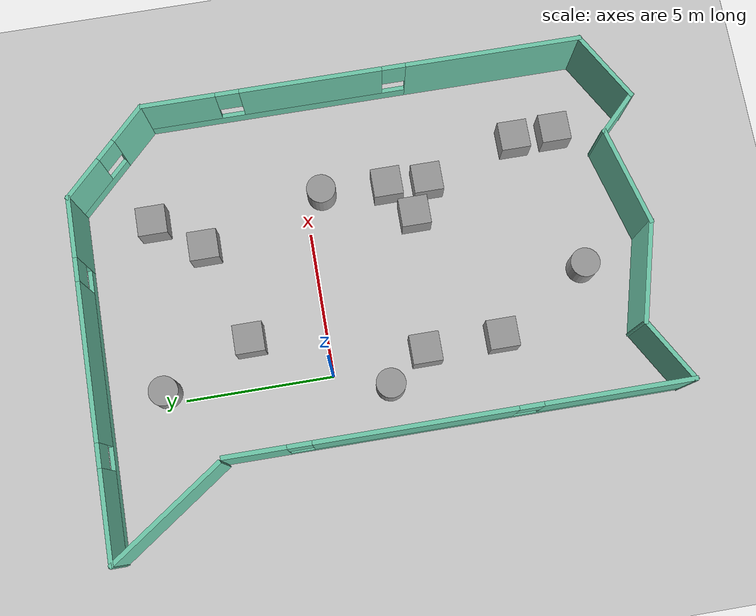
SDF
<sdf version="1.6">
 <world name="default">
  <light name="sun" type="directional">
   <pose>0 0 10 0 -0 0</pose>
   <diffuse>0.8 0.8 0.8 1</diffuse>
   <specular>0.2 0.2 0.2 1</specular>
   <attenuation>
    <range>1000</range>
    <constant>0.9</constant>
    <linear>0.01</linear>
    <quadratic>0.001</quadratic>
   </attenuation>
   <direction>-0.5 0.1 -0.9</direction>
  </light>
  <model name="ground_plane">
   <static>1</static>
   <link name="link">
    <collision name="collision">
     <geometry><plane><normal>0 0 1</normal><size>100 100</size></plane></geometry>
     <surface><friction><ode><mu>100</mu><mu2>50</mu2></ode></friction></surface>
    </collision>
    <visual name="visual">
     <cast_shadows>0</cast_shadows>
     <geometry><plane><normal>0 0 1</normal><size>100 100</size></plane></geometry>
     <material>
      <script><uri>file://media/materials/scripts/gazebo.material</uri><name>Gazebo/Grey</name></script>
     </material>
    </visual>
   </link>
  </model>
  <gravity>0 0 -9.8</gravity>
  <magnetic_field>6e-06 2.3e-05 -4.2e-05</magnetic_field>
  <atmosphere type="adiabatic"/>
  <physics name="default_physics" default="0" type="ode">
   <max_step_size>0.001</max_step_size>
   <real_time_factor>1</real_time_factor>
   <real_time_update_rate>1000</real_time_update_rate>
  </physics>
  <scene><ambient>0.4 0.4 0.4 1</ambient><background>0.7 0.7 0.7 1</background><shadows>1</shadows></scene>
  <spherical_coordinates>
   <surface_model>EARTH_WGS84</surface_model>
   <latitude_deg>0</latitude_deg>
   <longitude_deg>0</longitude_deg>
   <elevation>0</elevation>
   <heading_deg>0</heading_deg>
  </spherical_coordinates>
  <model name="Weird">
   <pose>2.34456 -1.8502 0 0 -0 0</pose>
   <link name="Wall_0">
    <pose>-4.60456 -1.9098 0 0 0 -1.5708</pose>
    <visual name="Wall_0_Visual_0">
     <pose>-6.57843 0 1.25 0 -0 0</pose>
     <geometry><box><size>2.09314 0.15 2.5</size></box></geometry>
     <material>
      <script><uri>file://media/materials/scripts/gazebo.material</uri><name>Gazebo/Grey</name></script>
      <ambient>0.435294 0.796078 0.67451 1</ambient>
     </material>
     <meta><layer>0</layer></meta>
    </visual>
    <collision name="Wall_0_Collision_0">
     <geometry><box><size>2.09314 0.15 2.5</size></box></geometry>
     <pose>-6.57843 0 1.25 0 -0 0</pose>
    </collision>
    <visual name="Wall_0_Visual_1">
     <pose>1.04657 0 0.25 0 -0 0</pose>
     <geometry><box><size>13.1569 0.15 0.5</size></box></geometry>
     <material>
      <script><uri>file://media/materials/scripts/gazebo.material</uri><name>Gazebo/Grey</name></script>
      <ambient>0.435294 0.796078 0.67451 1</ambient>
     </material>
     <meta><layer>0</layer></meta>
    </visual>
    <collision name="Wall_0_Collision_1">
     <geometry><box><size>13.1569 0.15 0.5</size></box></geometry>
     <pose>1.04657 0 0.25 0 -0 0</pose>
    </collision>
    <visual name="Wall_0_Visual_2">
     <pose>-1.43096 0 1.5 0 -0 0</pose>
     <geometry><box><size>6.60179 0.15 2</size></box></geometry>
     <material>
      <script><uri>file://media/materials/scripts/gazebo.material</uri><name>Gazebo/Grey</name></script>
      <ambient>0.435294 0.796078 0.67451 1</ambient>
     </material>
     <meta><layer>0</layer></meta>
    </visual>
    <collision name="Wall_0_Collision_2">
     <geometry><box><size>6.60179 0.15 2</size></box></geometry>
     <pose>-1.43096 0 1.5 0 -0 0</pose>
    </collision>
    <visual name="Wall_0_Visual_3">
     <pose>5.14747 0 1.5 0 -0 0</pose>
     <geometry><box><size>4.95507 0.15 2</size></box></geometry>
     <material>
      <script><uri>file://media/materials/scripts/gazebo.material</uri><name>Gazebo/Grey</name></script>
      <ambient>0.435294 0.796078 0.67451 1</ambient>
     </material>
     <meta><layer>0</layer></meta>
    </visual>
    <collision name="Wall_0_Collision_3">
     <geometry><box><size>4.95507 0.15 2</size></box></geometry>
     <pose>5.14747 0 1.5 0 -0 0</pose>
    </collision>
    <visual name="Wall_0_Visual_4">
     <pose>-5.13186 0 1.9 0 -0 0</pose>
     <geometry><box><size>0.8 0.15 1.2</size></box></geometry>
     <material>
      <script><uri>file://media/materials/scripts/gazebo.material</uri><name>Gazebo/Grey</name></script>
      <ambient>0.435294 0.796078 0.67451 1</ambient>
     </material>
     <meta><layer>0</layer></meta>
    </visual>
    <collision name="Wall_0_Collision_4">
     <geometry><box><size>0.8 0.15 1.2</size></box></geometry>
     <pose>-5.13186 0 1.9 0 -0 0</pose>
    </collision>
    <visual name="Wall_0_Visual_5">
     <pose>2.26993 0 1.9 0 -0 0</pose>
     <geometry><box><size>0.8 0.15 1.2</size></box></geometry>
     <material>
      <script><uri>file://media/materials/scripts/gazebo.material</uri><name>Gazebo/Grey</name></script>
      <ambient>0.435294 0.796078 0.67451 1</ambient>
     </material>
     <meta><layer>0</layer></meta>
    </visual>
    <collision name="Wall_0_Collision_5">
     <geometry><box><size>0.8 0.15 1.2</size></box></geometry>
     <pose>2.26993 0 1.9 0 -0 0</pose>
    </collision>
   </link>
   <link name="Wall_1">
    <collision name="Wall_1_Collision">
     <geometry><box><size>2.5 0.15 2.5</size></box></geometry>
     <pose>0 0 1.25 0 -0 0</pose>
    </collision>
    <visual name="Wall_1_Visual">
     <pose>0 0 1.25 0 -0 0</pose>
     <geometry><box><size>2.5 0.15 2.5</size></box></geometry>
     <material>
      <script><uri>file://media/materials/scripts/gazebo.material</uri><name>Gazebo/Grey</name></script>
      <ambient>0.435294 0.796078 0.67451 1</ambient>
     </material>
     <meta><layer>0</layer></meta>
    </visual>
    <pose>-3.58697 -8.8723 0 0 -0 0.523599</pose>
   </link>
   <link name="Wall_2">
    <collision name="Wall_2_Collision">
     <geometry><box><size>3.5 0.15 2.5</size></box></geometry>
     <pose>0 0 1.25 0 -0 0</pose>
    </collision>
    <visual name="Wall_2_Visual">
     <pose>0 0 1.25 0 -0 0</pose>
     <geometry><box><size>3.5 0.15 2.5</size></box></geometry>
     <material>
      <script><uri>file://media/materials/scripts/gazebo.material</uri><name>Gazebo/Grey</name></script>
      <ambient>0.435294 0.796078 0.67451 1</ambient>
     </material>
     <meta><layer>0</layer></meta>
    </visual>
    <pose>-0.951469 -8.71832 0 0 0 -0.261799</pose>
   </link>
   <link name="Wall_3">
    <collision name="Wall_3_Collision">
     <geometry><box><size>3.5 0.15 2.5</size></box></geometry>
     <pose>0 0 1.25 0 -0 0</pose>
    </collision>
    <visual name="Wall_3_Visual">
     <pose>0 0 1.25 0 -0 0</pose>
     <geometry><box><size>3.5 0.15 2.5</size></box></geometry>
     <material>
      <script><uri>file://media/materials/scripts/gazebo.material</uri><name>Gazebo/Grey</name></script>
      <ambient>0.435294 0.796078 0.67451 1</ambient>
     </material>
     <meta><layer>0</layer></meta>
    </visual>
    <pose>2.28438 -8.71832 0 0 -0 0.261799</pose>
   </link>
   <link name="Wall_4">
    <collision name="Wall_4_Collision">
     <geometry><box><size>1.75 0.15 2.5</size></box></geometry>
     <pose>0 0 1.25 0 -0 0</pose>
    </collision>
    <visual name="Wall_4_Visual">
     <pose>0 0 1.25 0 -0 0</pose>
     <geometry><box><size>1.75 0.15 2.5</size></box></geometry>
     <material>
      <script><uri>file://media/materials/scripts/gazebo.material</uri><name>Gazebo/Grey</name></script>
      <ambient>0.435294 0.796078 0.67451 1</ambient>
     </material>
     <meta><layer>0</layer></meta>
    </visual>
    <pose>4.46799 -8.85049 0 0 0 -0.785398</pose>
   </link>
   <link name="Wall_5">
    <collision name="Wall_5_Collision">
     <geometry><box><size>2.75 0.15 2.5</size></box></geometry>
     <pose>0 0 1.25 0 -0 0</pose>
    </collision>
    <visual name="Wall_5_Visual">
     <pose>0 0 1.25 0 -0 0</pose>
     <geometry><box><size>2.75 0.15 2.5</size></box></geometry>
     <material>
      <script><uri>file://media/materials/scripts/gazebo.material</uri><name>Gazebo/Grey</name></script>
      <ambient>0.435294 0.796078 0.67451 1</ambient>
     </material>
     <meta><layer>0</layer></meta>
    </visual>
    <pose>6.15951 -8.76617 0 0 -0 0.523599</pose>
   </link>
   <link name="Wall_6">
    <pose>7.28535 -0.691173 0 0 -0 1.5708</pose>
    <visual name="Wall_6_Visual_0">
     <pose>-4.49993 0 1.25 0 -0 0</pose>
     <geometry><box><size>6.00015 0.15 2.5</size></box></geometry>
     <material>
      <script><uri>file://media/materials/scripts/gazebo.material</uri><name>Gazebo/Grey</name></script>
      <ambient>0.435294 0.796078 0.67451 1</ambient>
     </material>
     <meta><layer>0</layer></meta>
    </visual>
    <collision name="Wall_6_Collision_0">
     <geometry><box><size>6.00015 0.15 2.5</size></box></geometry>
     <pose>-4.49993 0 1.25 0 -0 0</pose>
    </collision>
    <visual name="Wall_6_Visual_1">
     <pose>3.00007 0 0.25 0 -0 0</pose>
     <geometry><box><size>8.99985 0.15 0.5</size></box></geometry>
     <material>
      <script><uri>file://media/materials/scripts/gazebo.material</uri><name>Gazebo/Grey</name></script>
      <ambient>0.435294 0.796078 0.67451 1</ambient>
     </material>
     <meta><layer>0</layer></meta>
    </visual>
    <collision name="Wall_6_Collision_1">
     <geometry><box><size>8.99985 0.15 0.5</size></box></geometry>
     <pose>3.00007 0 0.25 0 -0 0</pose>
    </collision>
    <visual name="Wall_6_Visual_2">
     <pose>1.71377 0 1.5 0 -0 0</pose>
     <geometry><box><size>4.82724 0.15 2</size></box></geometry>
     <material>
      <script><uri>file://media/materials/scripts/gazebo.material</uri><name>Gazebo/Grey</name></script>
      <ambient>0.435294 0.796078 0.67451 1</ambient>
     </material>
     <meta><layer>0</layer></meta>
    </visual>
    <collision name="Wall_6_Collision_2">
     <geometry><box><size>4.82724 0.15 2</size></box></geometry>
     <pose>1.71377 0 1.5 0 -0 0</pose>
    </collision>
    <visual name="Wall_6_Visual_3">
     <pose>6.21369 0 1.5 0 -0 0</pose>
     <geometry><box><size>2.57261 0.15 2</size></box></geometry>
     <material>
      <script><uri>file://media/materials/scripts/gazebo.material</uri><name>Gazebo/Grey</name></script>
      <ambient>0.435294 0.796078 0.67451 1</ambient>
     </material>
     <meta><layer>0</layer></meta>
    </visual>
    <collision name="Wall_6_Collision_3">
     <geometry><box><size>2.57261 0.15 2</size></box></geometry>
     <pose>6.21369 0 1.5 0 -0 0</pose>
    </collision>
    <visual name="Wall_6_Visual_4">
     <pose>-1.09985 0 1.9 0 -0 0</pose>
     <geometry><box><size>0.8 0.15 1.2</size></box></geometry>
     <material>
      <script><uri>file://media/materials/scripts/gazebo.material</uri><name>Gazebo/Grey</name></script>
      <ambient>0.435294 0.796078 0.67451 1</ambient>
     </material>
     <meta><layer>0</layer></meta>
    </visual>
    <collision name="Wall_6_Collision_4">
     <geometry><box><size>0.8 0.15 1.2</size></box></geometry>
     <pose>-1.09985 0 1.9 0 -0 0</pose>
    </collision>
    <visual name="Wall_6_Visual_5">
     <pose>4.52739 0 1.9 0 -0 0</pose>
     <geometry><box><size>0.8 0.15 1.2</size></box></geometry>
     <material>
      <script><uri>file://media/materials/scripts/gazebo.material</uri><name>Gazebo/Grey</name></script>
      <ambient>0.435294 0.796078 0.67451 1</ambient>
     </material>
     <meta><layer>0</layer></meta>
    </visual>
    <collision name="Wall_6_Collision_5">
     <geometry><box><size>0.8 0.15 1.2</size></box></geometry>
     <pose>4.52739 0 1.9 0 -0 0</pose>
    </collision>
   </link>
   <link name="Wall_7">
    <pose>5.92416 8.09501 0 0 -0 2.35619</pose>
    <visual name="Wall_7_Visual_0">
     <pose>-1.23296 0 1.25 0 -0 0</pose>
     <geometry><box><size>1.53408 0.15 2.5</size></box></geometry>
     <material>
      <script><uri>file://media/materials/scripts/gazebo.material</uri><name>Gazebo/Grey</name></script>
      <ambient>0.435294 0.796078 0.67451 1</ambient>
     </material>
     <meta><layer>0</layer></meta>
    </visual>
    <collision name="Wall_7_Collision_0">
     <geometry><box><size>1.53408 0.15 2.5</size></box></geometry>
     <pose>-1.23296 0 1.25 0 -0 0</pose>
    </collision>
    <visual name="Wall_7_Visual_1">
     <pose>0.76704 0 0.25 0 -0 0</pose>
     <geometry><box><size>2.46592 0.15 0.5</size></box></geometry>
     <material>
      <script><uri>file://media/materials/scripts/gazebo.material</uri><name>Gazebo/Grey</name></script>
      <ambient>0.435294 0.796078 0.67451 1</ambient>
     </material>
     <meta><layer>0</layer></meta>
    </visual>
    <collision name="Wall_7_Collision_1">
     <geometry><box><size>2.46592 0.15 0.5</size></box></geometry>
     <pose>0.76704 0 0.25 0 -0 0</pose>
    </collision>
    <visual name="Wall_7_Visual_2">
     <pose>1.16704 0 1.5 0 -0 0</pose>
     <geometry><box><size>1.66592 0.15 2</size></box></geometry>
     <material>
      <script><uri>file://media/materials/scripts/gazebo.material</uri><name>Gazebo/Grey</name></script>
      <ambient>0.435294 0.796078 0.67451 1</ambient>
     </material>
     <meta><layer>0</layer></meta>
    </visual>
    <collision name="Wall_7_Collision_2">
     <geometry><box><size>1.66592 0.15 2</size></box></geometry>
     <pose>1.16704 0 1.5 0 -0 0</pose>
    </collision>
    <visual name="Wall_7_Visual_3">
     <pose>-0.06592 0 1.9 0 -0 0</pose>
     <geometry><box><size>0.8 0.15 1.2</size></box></geometry>
     <material>
      <script><uri>file://media/materials/scripts/gazebo.material</uri><name>Gazebo/Grey</name></script>
      <ambient>0.435294 0.796078 0.67451 1</ambient>
     </material>
     <meta><layer>0</layer></meta>
    </visual>
    <collision name="Wall_7_Collision_3">
     <geometry><box><size>0.8 0.15 1.2</size></box></geometry>
     <pose>-0.06592 0 1.9 0 -0 0</pose>
    </collision>
   </link>
   <link name="Wall_8">
    <pose>-1.36202 9.45619 0 0 -0 3.14159</pose>
    <visual name="Wall_8_Visual_0">
     <pose>-4.94281 0 1.25 0 -0 0</pose>
     <geometry><box><size>2.11438 0.15 2.5</size></box></geometry>
     <material>
      <script><uri>file://media/materials/scripts/gazebo.material</uri><name>Gazebo/Grey</name></script>
      <ambient>0.435294 0.796078 0.67451 1</ambient>
     </material>
     <meta><layer>0</layer></meta>
    </visual>
    <collision name="Wall_8_Collision_0">
     <geometry><box><size>2.11438 0.15 2.5</size></box></geometry>
     <pose>-4.94281 0 1.25 0 -0 0</pose>
    </collision>
    <visual name="Wall_8_Visual_1">
     <pose>1.05719 0 0.25 0 -0 0</pose>
     <geometry><box><size>9.88562 0.15 0.5</size></box></geometry>
     <material>
      <script><uri>file://media/materials/scripts/gazebo.material</uri><name>Gazebo/Grey</name></script>
      <ambient>0.435294 0.796078 0.67451 1</ambient>
     </material>
     <meta><layer>0</layer></meta>
    </visual>
    <collision name="Wall_8_Collision_1">
     <geometry><box><size>9.88562 0.15 0.5</size></box></geometry>
     <pose>1.05719 0 0.25 0 -0 0</pose>
    </collision>
    <visual name="Wall_8_Visual_2">
     <pose>-0.474291 0 1.5 0 -0 0</pose>
     <geometry><box><size>5.22267 0.15 2</size></box></geometry>
     <material>
      <script><uri>file://media/materials/scripts/gazebo.material</uri><name>Gazebo/Grey</name></script>
      <ambient>0.435294 0.796078 0.67451 1</ambient>
     </material>
     <meta><layer>0</layer></meta>
    </visual>
    <collision name="Wall_8_Collision_2">
     <geometry><box><size>5.22267 0.15 2</size></box></geometry>
     <pose>-0.474291 0 1.5 0 -0 0</pose>
    </collision>
    <visual name="Wall_8_Visual_3">
     <pose>4.46852 0 1.5 0 -0 0</pose>
     <geometry><box><size>3.06296 0.15 2</size></box></geometry>
     <material>
      <script><uri>file://media/materials/scripts/gazebo.material</uri><name>Gazebo/Grey</name></script>
      <ambient>0.435294 0.796078 0.67451 1</ambient>
     </material>
     <meta><layer>0</layer></meta>
    </visual>
    <collision name="Wall_8_Collision_3">
     <geometry><box><size>3.06296 0.15 2</size></box></geometry>
     <pose>4.46852 0 1.5 0 -0 0</pose>
    </collision>
    <visual name="Wall_8_Visual_4">
     <pose>-3.48562 0 1.9 0 -0 0</pose>
     <geometry><box><size>0.8 0.15 1.2</size></box></geometry>
     <material>
      <script><uri>file://media/materials/scripts/gazebo.material</uri><name>Gazebo/Grey</name></script>
      <ambient>0.435294 0.796078 0.67451 1</ambient>
     </material>
     <meta><layer>0</layer></meta>
    </visual>
    <collision name="Wall_8_Collision_4">
     <geometry><box><size>0.8 0.15 1.2</size></box></geometry>
     <pose>-3.48562 0 1.9 0 -0 0</pose>
    </collision>
    <visual name="Wall_8_Visual_5">
     <pose>2.53704 0 1.9 0 -0 0</pose>
     <geometry><box><size>0.8 0.15 1.2</size></box></geometry>
     <material>
      <script><uri>file://media/materials/scripts/gazebo.material</uri><name>Gazebo/Grey</name></script>
      <ambient>0.435294 0.796078 0.67451 1</ambient>
     </material>
     <meta><layer>0</layer></meta>
    </visual>
    <collision name="Wall_8_Collision_5">
     <geometry><box><size>0.8 0.15 1.2</size></box></geometry>
     <pose>2.53704 0 1.9 0 -0 0</pose>
    </collision>
   </link>
   <link name="Wall_9">
    <collision name="Wall_9_Collision">
     <geometry><box><size>4.61625 0.15 2.5</size></box></geometry>
     <pose>0 0 1.25 0 -0 0</pose>
    </collision>
    <visual name="Wall_9_Visual">
     <pose>0 0 1.25 0 -0 0</pose>
     <geometry><box><size>4.61625 0.15 2.5</size></box></geometry>
     <material>
      <script><uri>file://media/materials/scripts/gazebo.material</uri><name>Gazebo/Grey</name></script>
      <ambient>0.435294 0.796078 0.67451 1</ambient>
     </material>
     <meta><layer>0</layer></meta>
    </visual>
    <pose>-6.01202 7.62282 0 0 0 -0.963136</pose>
   </link>
   <static>1</static>
  </model>
  <model name="unit_box">
   <pose>6.15726 5.25127 0.499995 0 1e-05 0</pose>
   <link name="link">
    <inertial>
     <mass>1</mass>
     <inertia>
      <ixx>0.166667</ixx>
      <ixy>0</ixy>
      <ixz>0</ixz>
      <iyy>0.166667</iyy>
      <iyz>0</iyz>
      <izz>0.166667</izz>
     </inertia>
    </inertial>
    <collision name="collision"><geometry><box><size>1 1 1</size></box></geometry></collision>
    <visual name="visual">
     <geometry><box><size>1 1 1</size></box></geometry>
     <material>
      <script><name>Gazebo/Grey</name><uri>file://media/materials/scripts/gazebo.material</uri></script>
     </material>
    </visual>
   </link>
  </model>
  <model name="unit_cylinder">
   <pose>6.31084 -0.59401 0.499993 0 -0 0</pose>
   <link name="link">
    <inertial>
     <mass>1</mass>
     <inertia><ixx>0.145833</ixx><ixy>0</ixy><ixz>0</ixz><iyy>0.145833</iyy><iyz>0</iyz><izz>0.125</izz></inertia>
    </inertial>
    <collision name="collision">
     <geometry><cylinder><radius>0.5</radius><length>1</length></cylinder></geometry>
    </collision>
    <visual name="visual">
     <geometry><cylinder><radius>0.5</radius><length>1</length></cylinder></geometry>
     <material>
      <script><name>Gazebo/Grey</name><uri>file://media/materials/scripts/gazebo.material</uri></script>
     </material>
    </visual>
   </link>
  </model>
  <model name="unit_cylinder_0">
   <pose>0.337407 5.59281 0.499994 -3e-06 -2e-06 0</pose>
   <link name="link">
    <inertial>
     <mass>1</mass>
     <inertia><ixx>0.145833</ixx><ixy>0</ixy><ixz>0</ixz><iyy>0.145833</iyy><iyz>0</iyz><izz>0.125</izz></inertia>
    </inertial>
    <collision name="collision">
     <geometry><cylinder><radius>0.5</radius><length>1</length></cylinder></geometry>
    </collision>
    <visual name="visual">
     <geometry><cylinder><radius>0.5</radius><length>1</length></cylinder></geometry>
     <material>
      <script><name>Gazebo/Grey</name><uri>file://media/materials/scripts/gazebo.material</uri></script>
     </material>
    </visual>
   </link>
  </model>
  <plugin name="collision_map_creator" filename="libcollision_map_creator.so"/>
  <model name="unit_box_0">
   <pose>5.02628 3.64153 0.499995 -1e-05 0 0</pose>
   <link name="link">
    <inertial>
     <mass>1</mass>
     <inertia>
      <ixx>0.166667</ixx>
      <ixy>0</ixy>
      <ixz>0</ixz>
      <iyy>0.166667</iyy>
      <iyz>0</iyz>
      <izz>0.166667</izz>
     </inertia>
    </inertial>
    <collision name="collision"><geometry><box><size>1 1 1</size></box></geometry></collision>
    <visual name="visual">
     <geometry><box><size>1 1 1</size></box></geometry>
     <material>
      <script><name>Gazebo/Grey</name><uri>file://media/materials/scripts/gazebo.material</uri></script>
     </material>
    </visual>
   </link>
  </model>
  <model name="unit_cylinder_1">
   <pose>-0.636787 -1.83458 0.499998 3e-06 -3e-06 0</pose>
   <link name="link">
    <inertial>
     <mass>1</mass>
     <inertia><ixx>0.145833</ixx><ixy>0</ixy><ixz>0</ixz><iyy>0.145833</iyy><iyz>0</iyz><izz>0.125</izz></inertia>
    </inertial>
    <collision name="collision">
     <geometry><cylinder><radius>0.5</radius><length>1</length></cylinder></geometry>
    </collision>
    <visual name="visual">
     <geometry><cylinder><radius>0.5</radius><length>1</length></cylinder></geometry>
     <material>
      <script><name>Gazebo/Grey</name><uri>file://media/materials/scripts/gazebo.material</uri></script>
     </material>
    </visual>
   </link>
  </model>
  <model name="unit_box_1">
   <pose>0.329271 -3.17005 0.499995 -1e-05 0 0</pose>
   <link name="link">
    <inertial>
     <mass>1</mass>
     <inertia>
      <ixx>0.166667</ixx>
      <ixy>0</ixy>
      <ixz>0</ixz>
      <iyy>0.166667</iyy>
      <iyz>0</iyz>
      <izz>0.166667</izz>
     </inertia>
    </inertial>
    <collision name="collision"><geometry><box><size>1 1 1</size></box></geometry></collision>
    <visual name="visual">
     <geometry><box><size>1 1 1</size></box></geometry>
     <material>
      <script><name>Gazebo/Grey</name><uri>file://media/materials/scripts/gazebo.material</uri></script>
     </material>
    </visual>
   </link>
  </model>
  <model name="unit_box_2">
   <pose>0.392898 -5.78266 0.499995 0 1e-05 0</pose>
   <link name="link">
    <inertial>
     <mass>1</mass>
     <inertia>
      <ixx>0.166667</ixx>
      <ixy>0</ixy>
      <ixz>0</ixz>
      <iyy>0.166667</iyy>
      <iyz>0</iyz>
      <izz>0.166667</izz>
     </inertia>
    </inertial>
    <collision name="collision"><geometry><box><size>1 1 1</size></box></geometry></collision>
    <visual name="visual">
     <geometry><box><size>1 1 1</size></box></geometry>
     <material>
      <script><name>Gazebo/Grey</name><uri>file://media/materials/scripts/gazebo.material</uri></script>
     </material>
    </visual>
   </link>
  </model>
  <model name="unit_box_3">
   <pose>1.62415 2.58019 0.499995 -1e-05 0 0</pose>
   <link name="link">
    <inertial>
     <mass>1</mass>
     <inertia>
      <ixx>0.166667</ixx>
      <ixy>0</ixy>
      <ixz>0</ixz>
      <iyy>0.166667</iyy>
      <iyz>0</iyz>
      <izz>0.166667</izz>
     </inertia>
    </inertial>
    <collision name="collision"><geometry><box><size>1 1 1</size></box></geometry></collision>
    <visual name="visual">
     <geometry><box><size>1 1 1</size></box></geometry>
     <material>
      <script><name>Gazebo/Grey</name><uri>file://media/materials/scripts/gazebo.material</uri></script>
     </material>
    </visual>
   </link>
  </model>
  <model name="unit_box_4">
   <pose>6.19425 -2.84802 0.499995 -1e-05 0 0</pose>
   <link name="link">
    <inertial>
     <mass>1</mass>
     <inertia>
      <ixx>0.166667</ixx>
      <ixy>0</ixy>
      <ixz>0</ixz>
      <iyy>0.166667</iyy>
      <iyz>0</iyz>
      <izz>0.166667</izz>
     </inertia>
    </inertial>
    <collision name="collision"><geometry><box><size>1 1 1</size></box></geometry></collision>
    <visual name="visual">
     <geometry><box><size>1 1 1</size></box></geometry>
     <material>
      <script><name>Gazebo/Grey</name><uri>file://media/materials/scripts/gazebo.material</uri></script>
     </material>
    </visual>
   </link>
  </model>
  <model name="unit_box_5">
   <pose>5.0198 -3.60919 0.499995 0 1e-05 0</pose>
   <link name="link">
    <inertial>
     <mass>1</mass>
     <inertia>
      <ixx>0.166667</ixx>
      <ixy>0</ixy>
      <ixz>0</ixz>
      <iyy>0.166667</iyy>
      <iyz>0</iyz>
      <izz>0.166667</izz>
     </inertia>
    </inertial>
    <collision name="collision"><geometry><box><size>1 1 1</size></box></geometry></collision>
    <visual name="visual">
     <geometry><box><size>1 1 1</size></box></geometry>
     <material>
      <script><name>Gazebo/Grey</name><uri>file://media/materials/scripts/gazebo.material</uri></script>
     </material>
    </visual>
   </link>
  </model>
  <model name="unit_box_6">
   <pose>6.12078 -4.2306 0.499995 -1e-05 0 0</pose>
   <link name="link">
    <inertial>
     <mass>1</mass>
     <inertia>
      <ixx>0.166667</ixx>
      <ixy>0</ixy>
      <ixz>0</ixz>
      <iyy>0.166667</iyy>
      <iyz>0</iyz>
      <izz>0.166667</izz>
     </inertia>
    </inertial>
    <collision name="collision"><geometry><box><size>1 1 1</size></box></geometry></collision>
    <visual name="visual">
     <geometry><box><size>1 1 1</size></box></geometry>
     <material>
      <script><name>Gazebo/Grey</name><uri>file://media/materials/scripts/gazebo.material</uri></script>
     </material>
    </visual>
   </link>
  </model>
  <model name="unit_box_7">
   <pose>7.1712 -8.87168 0.499995 0 1e-05 0</pose>
   <link name="link">
    <inertial>
     <mass>1</mass>
     <inertia>
      <ixx>0.166667</ixx>
      <ixy>0</ixy>
      <ixz>0</ixz>
      <iyy>0.166667</iyy>
      <iyz>0</iyz>
      <izz>0.166667</izz>
     </inertia>
    </inertial>
    <collision name="collision"><geometry><box><size>1 1 1</size></box></geometry></collision>
    <visual name="visual">
     <geometry><box><size>1 1 1</size></box></geometry>
     <material>
      <script><name>Gazebo/Grey</name><uri>file://media/materials/scripts/gazebo.material</uri></script>
     </material>
    </visual>
   </link>
  </model>
  <model name="unit_box_8">
   <pose>7.12442 -7.44552 0.499995 -1e-05 0 0</pose>
   <link name="link">
    <inertial>
     <mass>1</mass>
     <inertia>
      <ixx>0.166667</ixx>
      <ixy>0</ixy>
      <ixz>0</ixz>
      <iyy>0.166667</iyy>
      <iyz>0</iyz>
      <izz>0.166667</izz>
     </inertia>
    </inertial>
    <collision name="collision"><geometry><box><size>1 1 1</size></box></geometry></collision>
    <visual name="visual">
     <geometry><box><size>1 1 1</size></box></geometry>
     <material>
      <script><name>Gazebo/Grey</name><uri>file://media/materials/scripts/gazebo.material</uri></script>
     </material>
    </visual>
   </link>
  </model>
  <model name="unit_cylinder_2">
   <pose>2.30232 -8.95933 0.499997 3e-06 4e-06 -0</pose>
   <link name="link">
    <inertial>
     <mass>1</mass>
     <inertia><ixx>0.145833</ixx><ixy>0</ixy><ixz>0</ixz><iyy>0.145833</iyy><iyz>0</iyz><izz>0.125</izz></inertia>
    </inertial>
    <collision name="collision">
     <geometry><cylinder><radius>0.5</radius><length>1</length></cylinder></geometry>
    </collision>
    <visual name="visual">
     <geometry><cylinder><radius>0.5</radius><length>1</length></cylinder></geometry>
     <material>
      <script><name>Gazebo/Grey</name><uri>file://media/materials/scripts/gazebo.material</uri></script>
     </material>
    </visual>
   </link>
  </model>
 </world>
</sdf>
